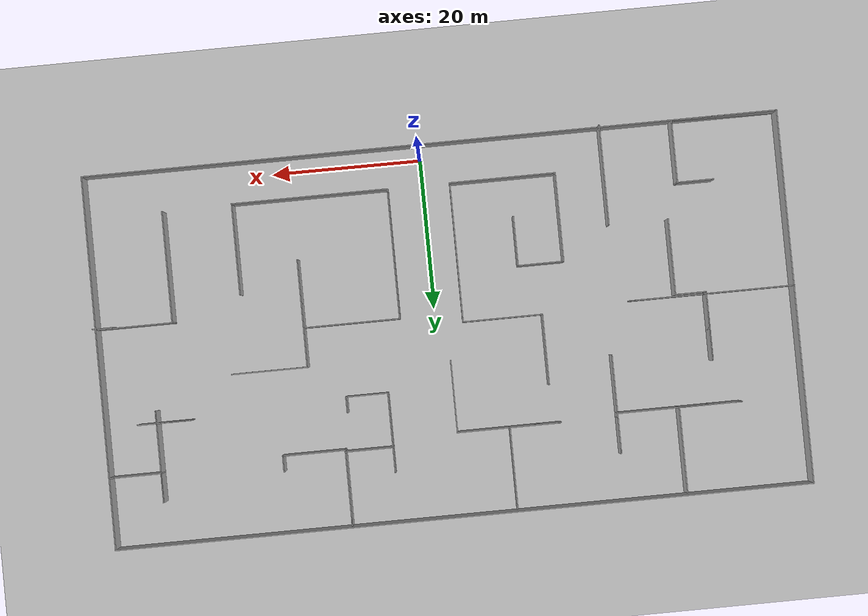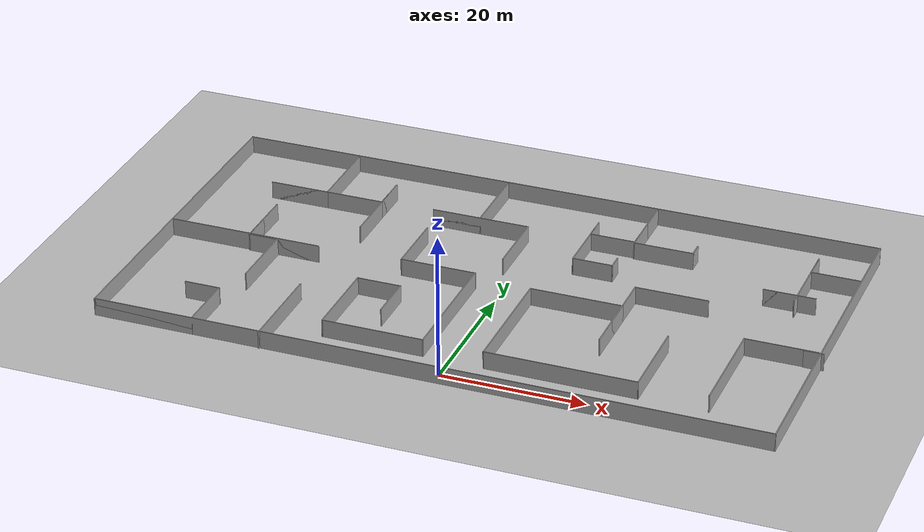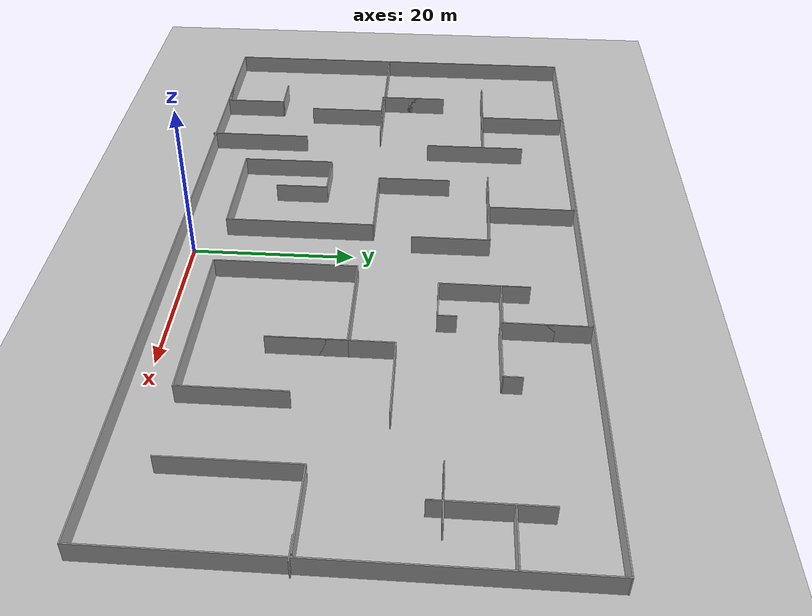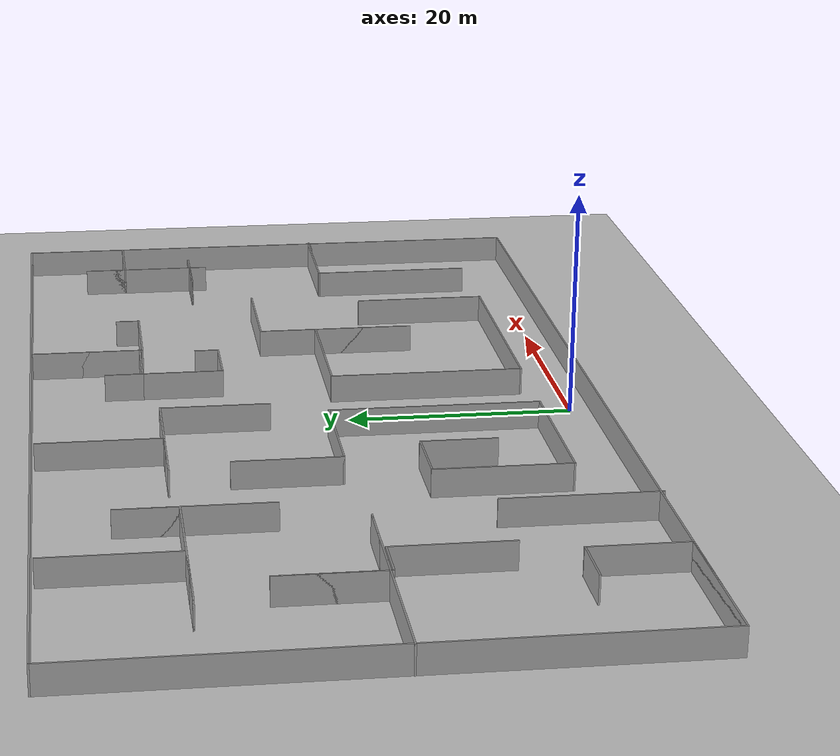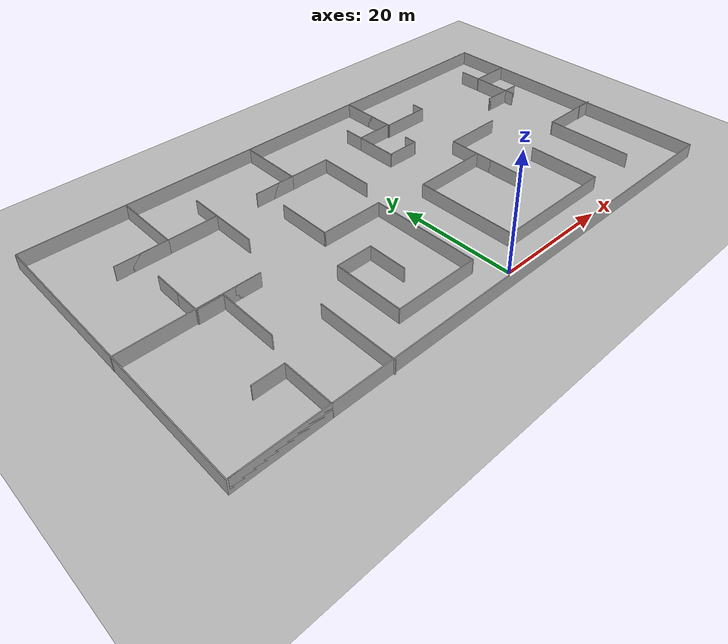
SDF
<sdf version="1.6">
 <world name="default">
  <model name="ground_plane">
   <static>1</static>
   <link name="link">
    <collision name="collision">
     <geometry><plane><normal>0 0 1</normal><size>100 100</size></plane></geometry>
     <surface><friction><ode><mu>100</mu><mu2>50</mu2></ode></friction></surface>
    </collision>
    <visual name="visual">
     <cast_shadows>0</cast_shadows>
     <geometry><plane><normal>0 0 1</normal><size>100 100</size></plane></geometry>
     <material>
      <script><uri>file://media/materials/scripts/gazebo.material</uri><name>Gazebo/Grey</name></script>
     </material>
    </visual>
   </link>
  </model>
  <model name="PaperTestRoom2">
   <pose>-1.27358 20.4941 0 0 -0 0</pose>
   <link name="Wall_10">
    <collision name="Wall_10_Collision">
     <geometry><box><size>14.25 0.15 2.5</size></box></geometry>
     <pose>0 0 1.25 0 -0 0</pose>
    </collision>
    <visual name="Wall_10_Visual">
     <pose>0 0 1.25 0 -0 0</pose>
     <geometry><box><size>14.25 0.15 2.5</size></box></geometry>
     <material>
      <script><uri>file://media/materials/scripts/gazebo.material</uri><name>Gazebo/Grey</name></script>
      <ambient>1 1 1 1</ambient>
     </material>
     <meta><layer>0</layer></meta>
    </visual>
    <pose>-39.665 -22.375 0 0 -0 0</pose>
   </link>
   <link name="Wall_11">
    <collision name="Wall_11_Collision">
     <geometry><box><size>8.5 0.15 2.5</size></box></geometry>
     <pose>0 0 1.25 0 -0 0</pose>
    </collision>
    <visual name="Wall_11_Visual">
     <pose>0 0 1.25 0 -0 0</pose>
     <geometry><box><size>8.5 0.15 2.5</size></box></geometry>
     <material>
      <script><uri>file://media/materials/scripts/gazebo.material</uri><name>Gazebo/Grey</name></script>
      <ambient>1 1 1 1</ambient>
     </material>
     <meta><layer>0</layer></meta>
    </visual>
    <pose>-32.615 -18.2 0 0 -0 1.5708</pose>
   </link>
   <link name="Wall_12">
    <collision name="Wall_12_Collision">
     <geometry><box><size>5 0.15 2.5</size></box></geometry>
     <pose>0 0 1.25 0 -0 0</pose>
    </collision>
    <visual name="Wall_12_Visual">
     <pose>0 0 1.25 0 -0 0</pose>
     <geometry><box><size>5 0.15 2.5</size></box></geometry>
     <material>
      <script><uri>file://media/materials/scripts/gazebo.material</uri><name>Gazebo/Grey</name></script>
      <ambient>1 1 1 1</ambient>
     </material>
     <meta><layer>0</layer></meta>
    </visual>
    <pose>-35.04 -14.025 0 0 -0 3.14159</pose>
   </link>
   <link name="Wall_14">
    <collision name="Wall_14_Collision">
     <geometry><box><size>13.5 0.15 2.5</size></box></geometry>
     <pose>0 0 1.25 0 -0 0</pose>
    </collision>
    <visual name="Wall_14_Visual">
     <pose>0 0 1.25 0 -0 0</pose>
     <geometry><box><size>13.5 0.15 2.5</size></box></geometry>
     <material>
      <script><uri>file://media/materials/scripts/gazebo.material</uri><name>Gazebo/Grey</name></script>
      <ambient>1 1 1 1</ambient>
     </material>
     <meta><layer>0</layer></meta>
    </visual>
    <pose>-22.9755 -15.9599 0 0 -0 1.5708</pose>
   </link>
   <link name="Wall_17">
    <collision name="Wall_17_Collision">
     <geometry><box><size>14.25 0.15 2.5</size></box></geometry>
     <pose>0 0 1.25 0 -0 0</pose>
    </collision>
    <visual name="Wall_17_Visual">
     <pose>0 0 1.25 0 -0 0</pose>
     <geometry><box><size>14.25 0.15 2.5</size></box></geometry>
     <material>
      <script><uri>file://media/materials/scripts/gazebo.material</uri><name>Gazebo/Grey</name></script>
      <ambient>1 1 1 1</ambient>
     </material>
     <meta><layer>0</layer></meta>
    </visual>
    <pose>-9.45369 -16.8689 0 0 -0 0</pose>
   </link>
   <link name="Wall_18">
    <collision name="Wall_18_Collision">
     <geometry><box><size>18.75 0.15 2.5</size></box></geometry>
     <pose>0 0 1.25 0 -0 0</pose>
    </collision>
    <visual name="Wall_18_Visual">
     <pose>0 0 1.25 0 -0 0</pose>
     <geometry><box><size>18.75 0.15 2.5</size></box></geometry>
     <material>
      <script><uri>file://media/materials/scripts/gazebo.material</uri><name>Gazebo/Grey</name></script>
      <ambient>1 1 1 1</ambient>
     </material>
     <meta><layer>0</layer></meta>
    </visual>
    <pose>-2.40369 -7.56892 0 0 -0 1.5708</pose>
   </link>
   <link name="Wall_19">
    <collision name="Wall_19_Collision">
     <geometry><box><size>10.75 0.15 2.5</size></box></geometry>
     <pose>0 0 1.25 0 -0 0</pose>
    </collision>
    <visual name="Wall_19_Visual">
     <pose>0 0 1.25 0 -0 0</pose>
     <geometry><box><size>10.75 0.15 2.5</size></box></geometry>
     <material>
      <script><uri>file://media/materials/scripts/gazebo.material</uri><name>Gazebo/Grey</name></script>
      <ambient>1 1 1 1</ambient>
     </material>
     <meta><layer>0</layer></meta>
    </visual>
    <pose>-7.70369 1.73108 0 0 -0 3.14159</pose>
   </link>
   <link name="Wall_20">
    <collision name="Wall_20_Collision">
     <geometry><box><size>9.5 0.15 2.5</size></box></geometry>
     <pose>0 0 1.25 0 -0 0</pose>
    </collision>
    <visual name="Wall_20_Visual">
     <pose>0 0 1.25 0 -0 0</pose>
     <geometry><box><size>9.5 0.15 2.5</size></box></geometry>
     <material>
      <script><uri>file://media/materials/scripts/gazebo.material</uri><name>Gazebo/Grey</name></script>
      <ambient>1 1 1 1</ambient>
     </material>
     <meta><layer>0</layer></meta>
    </visual>
    <pose>-13.0037 6.40608 0 0 -0 1.5708</pose>
   </link>
   <link name="Wall_23">
    <collision name="Wall_23_Collision">
     <geometry><box><size>12 0.15 2.5</size></box></geometry>
     <pose>0 0 1.25 0 -0 0</pose>
    </collision>
    <visual name="Wall_23_Visual">
     <pose>0 0 1.25 0 -0 0</pose>
     <geometry><box><size>12 0.15 2.5</size></box></geometry>
     <material>
      <script><uri>file://media/materials/scripts/gazebo.material</uri><name>Gazebo/Grey</name></script>
      <ambient>1 1 1 1</ambient>
     </material>
     <meta><layer>0</layer></meta>
    </visual>
    <pose>-16.5037 -10.9439 0 0 -0 1.5708</pose>
   </link>
   <link name="Wall_24">
    <collision name="Wall_24_Collision">
     <geometry><box><size>6.25 0.15 2.5</size></box></geometry>
     <pose>0 0 1.25 0 -0 0</pose>
    </collision>
    <visual name="Wall_24_Visual">
     <pose>0 0 1.25 0 -0 0</pose>
     <geometry><box><size>6.25 0.15 2.5</size></box></geometry>
     <material>
      <script><uri>file://media/materials/scripts/gazebo.material</uri><name>Gazebo/Grey</name></script>
      <ambient>1 1 1 1</ambient>
     </material>
     <meta><layer>0</layer></meta>
    </visual>
    <pose>-13.4537 -5.01892 0 0 -0 0</pose>
   </link>
   <link name="Wall_25">
    <collision name="Wall_25_Collision">
     <geometry><box><size>6.75 0.15 2.5</size></box></geometry>
     <pose>0 0 1.25 0 -0 0</pose>
    </collision>
    <visual name="Wall_25_Visual">
     <pose>0 0 1.25 0 -0 0</pose>
     <geometry><box><size>6.75 0.15 2.5</size></box></geometry>
     <material>
      <script><uri>file://media/materials/scripts/gazebo.material</uri><name>Gazebo/Grey</name></script>
      <ambient>1 1 1 1</ambient>
     </material>
     <meta><layer>0</layer></meta>
    </visual>
    <pose>-10.4037 -8.31892 0 0 -0 -1.5708</pose>
   </link>
   <link name="Wall_30">
    <collision name="Wall_30_Collision">
     <geometry><box><size>21 0.15 2.5</size></box></geometry>
     <pose>0 0 1.25 0 -0 0</pose>
    </collision>
    <visual name="Wall_30_Visual">
     <pose>0 0 1.25 0 -0 0</pose>
     <geometry><box><size>21 0.15 2.5</size></box></geometry>
     <material>
      <script><uri>file://media/materials/scripts/gazebo.material</uri><name>Gazebo/Grey</name></script>
      <ambient>1 1 1 1</ambient>
     </material>
     <meta><layer>0</layer></meta>
    </visual>
    <pose>16.3713 -16.8689 0 0 -0 0</pose>
   </link>
   <link name="Wall_31">
    <collision name="Wall_31_Collision">
     <geometry><box><size>12.25 0.15 2.5</size></box></geometry>
     <pose>0 0 1.25 0 -0 0</pose>
    </collision>
    <visual name="Wall_31_Visual">
     <pose>0 0 1.25 0 -0 0</pose>
     <geometry><box><size>12.25 0.15 2.5</size></box></geometry>
     <material>
      <script><uri>file://media/materials/scripts/gazebo.material</uri><name>Gazebo/Grey</name></script>
      <ambient>1 1 1 1</ambient>
     </material>
     <meta><layer>0</layer></meta>
    </visual>
    <pose>26.7963 -10.8189 0 0 -0 1.5708</pose>
   </link>
   <link name="Wall_34">
    <collision name="Wall_34_Collision">
     <geometry><box><size>17.5 0.15 2.5</size></box></geometry>
     <pose>0 0 1.25 0 -0 0</pose>
    </collision>
    <visual name="Wall_34_Visual">
     <pose>0 0 1.25 0 -0 0</pose>
     <geometry><box><size>17.5 0.15 2.5</size></box></geometry>
     <material>
      <script><uri>file://media/materials/scripts/gazebo.material</uri><name>Gazebo/Grey</name></script>
      <ambient>1 1 1 1</ambient>
     </material>
     <meta><layer>0</layer></meta>
    </visual>
    <pose>5.94631 -8.19392 0 0 -0 1.5708</pose>
   </link>
   <link name="Wall_35">
    <collision name="Wall_35_Collision">
     <geometry><box><size>13 0.15 2.5</size></box></geometry>
     <pose>0 0 1.25 0 -0 0</pose>
    </collision>
    <visual name="Wall_35_Visual">
     <pose>0 0 1.25 0 -0 0</pose>
     <geometry><box><size>13 0.15 2.5</size></box></geometry>
     <material>
      <script><uri>file://media/materials/scripts/gazebo.material</uri><name>Gazebo/Grey</name></script>
      <ambient>1 1 1 1</ambient>
     </material>
     <meta><layer>0</layer></meta>
    </visual>
    <pose>12.3713 0.481076 0 0 -0 0</pose>
   </link>
   <link name="Wall_36">
    <collision name="Wall_36_Collision">
     <geometry><box><size>9.25 0.15 2.5</size></box></geometry>
     <pose>0 0 1.25 0 -0 0</pose>
    </collision>
    <visual name="Wall_36_Visual">
     <pose>0 0 1.25 0 -0 0</pose>
     <geometry><box><size>9.25 0.15 2.5</size></box></geometry>
     <material>
      <script><uri>file://media/materials/scripts/gazebo.material</uri><name>Gazebo/Grey</name></script>
      <ambient>1 1 1 1</ambient>
     </material>
     <meta><layer>0</layer></meta>
    </visual>
    <pose>18.7963 -4.06892 0 0 -0 -1.5708</pose>
   </link>
   <link name="Wall_37">
    <collision name="Wall_37_Collision">
     <geometry><box><size>14.5 0.15 2.5</size></box></geometry>
     <pose>0 0 1.25 0 -0 0</pose>
    </collision>
    <visual name="Wall_37_Visual">
     <pose>0 0 1.25 0 -0 0</pose>
     <geometry><box><size>14.5 0.15 2.5</size></box></geometry>
     <material>
      <script><uri>file://media/materials/scripts/gazebo.material</uri><name>Gazebo/Grey</name></script>
      <ambient>1 1 1 1</ambient>
     </material>
     <meta><layer>0</layer></meta>
    </visual>
    <pose>18.7963 -1.44392 0 0 -0 1.5708</pose>
   </link>
   <link name="Wall_38">
    <collision name="Wall_38_Collision">
     <geometry><box><size>10.25 0.15 2.5</size></box></geometry>
     <pose>0 0 1.25 0 -0 0</pose>
    </collision>
    <visual name="Wall_38_Visual">
     <pose>0 0 1.25 0 -0 0</pose>
     <geometry><box><size>10.25 0.15 2.5</size></box></geometry>
     <material>
      <script><uri>file://media/materials/scripts/gazebo.material</uri><name>Gazebo/Grey</name></script>
      <ambient>1 1 1 1</ambient>
     </material>
     <meta><layer>0</layer></meta>
    </visual>
    <pose>23.8463 5.73108 0 0 -0 0</pose>
   </link>
   <link name="Wall_41">
    <collision name="Wall_41_Collision">
     <geometry><box><size>15 0.15 2.5</size></box></geometry>
     <pose>0 0 1.25 0 -0 0</pose>
    </collision>
    <visual name="Wall_41_Visual">
     <pose>0 0 1.25 0 -0 0</pose>
     <geometry><box><size>15 0.15 2.5</size></box></geometry>
     <material>
      <script><uri>file://media/materials/scripts/gazebo.material</uri><name>Gazebo/Grey</name></script>
      <ambient>1 1 1 1</ambient>
     </material>
     <meta><layer>0</layer></meta>
    </visual>
    <pose>36.1307 -9.29131 0 0 -0 1.5708</pose>
   </link>
   <link name="Wall_42">
    <collision name="Wall_42_Collision">
     <geometry><box><size>10 0.15 2.5</size></box></geometry>
     <pose>0 0 1.25 0 -0 0</pose>
    </collision>
    <visual name="Wall_42_Visual">
     <pose>0 0 1.25 0 -0 0</pose>
     <geometry><box><size>10 0.15 2.5</size></box></geometry>
     <material>
      <script><uri>file://media/materials/scripts/gazebo.material</uri><name>Gazebo/Grey</name></script>
      <ambient>1 1 1 1</ambient>
     </material>
     <meta><layer>0</layer></meta>
    </visual>
    <pose>41.0556 -1.86631 0 0 -0 0</pose>
   </link>
   <link name="Wall_44">
    <collision name="Wall_44_Collision">
     <geometry><box><size>2.75 0.15 2.5</size></box></geometry>
     <pose>0 0 1.25 0 -0 0</pose>
    </collision>
    <visual name="Wall_44_Visual">
     <pose>0 0 1.25 0 -0 0</pose>
     <geometry><box><size>2.75 0.15 2.5</size></box></geometry>
     <material>
      <script><uri>file://media/materials/scripts/gazebo.material</uri><name>Gazebo/Grey</name></script>
      <ambient>1 1 1 1</ambient>
     </material>
     <meta><layer>0</layer></meta>
    </visual>
    <pose>45.4491 -1.98643 0 0 -0 0</pose>
   </link>
   <link name="Wall_48">
    <collision name="Wall_48_Collision">
     <geometry><box><size>7 0.15 2.5</size></box></geometry>
     <pose>0 0 1.25 0 -0 0</pose>
    </collision>
    <visual name="Wall_48_Visual">
     <pose>0 0 1.25 0 -0 0</pose>
     <geometry><box><size>7 0.15 2.5</size></box></geometry>
     <material>
      <script><uri>file://media/materials/scripts/gazebo.material</uri><name>Gazebo/Grey</name></script>
      <ambient>1 1 1 1</ambient>
     </material>
     <meta><layer>0</layer></meta>
    </visual>
    <pose>42.8737 17.9027 0 0 -0 3.14159</pose>
   </link>
   <link name="Wall_49">
    <collision name="Wall_49_Collision">
     <geometry><box><size>4 0.15 2.5</size></box></geometry>
     <pose>0 0 1.25 0 -0 0</pose>
    </collision>
    <visual name="Wall_49_Visual">
     <pose>0 0 1.25 0 -0 0</pose>
     <geometry><box><size>4 0.15 2.5</size></box></geometry>
     <material>
      <script><uri>file://media/materials/scripts/gazebo.material</uri><name>Gazebo/Grey</name></script>
      <ambient>1 1 1 1</ambient>
     </material>
     <meta><layer>0</layer></meta>
    </visual>
    <pose>39.4487 19.8277 0 0 -0 1.5708</pose>
   </link>
   <link name="Wall_50">
    <collision name="Wall_50_Collision">
     <geometry><box><size>12.25 0.15 2.5</size></box></geometry>
     <pose>0 0 1.25 0 -0 0</pose>
    </collision>
    <visual name="Wall_50_Visual">
     <pose>0 0 1.25 0 -0 0</pose>
     <geometry><box><size>12.25 0.15 2.5</size></box></geometry>
     <material>
      <script><uri>file://media/materials/scripts/gazebo.material</uri><name>Gazebo/Grey</name></script>
      <ambient>1 1 1 1</ambient>
     </material>
     <meta><layer>0</layer></meta>
    </visual>
    <pose>39.4487 15.7027 0 0 -0 -1.5708</pose>
   </link>
   <link name="Wall_51">
    <collision name="Wall_51_Collision">
     <geometry><box><size>1.75 0.15 2.5</size></box></geometry>
     <pose>0 0 1.25 0 -0 0</pose>
    </collision>
    <visual name="Wall_51_Visual">
     <pose>0 0 1.25 0 -0 0</pose>
     <geometry><box><size>1.75 0.15 2.5</size></box></geometry>
     <material>
      <script><uri>file://media/materials/scripts/gazebo.material</uri><name>Gazebo/Grey</name></script>
      <ambient>1 1 1 1</ambient>
     </material>
     <meta><layer>0</layer></meta>
    </visual>
    <pose>39.4487 10.4527 0 0 -0 1.5708</pose>
   </link>
   <link name="Wall_52">
    <collision name="Wall_52_Collision">
     <geometry><box><size>4.75 0.15 2.5</size></box></geometry>
     <pose>0 0 1.25 0 -0 0</pose>
    </collision>
    <visual name="Wall_52_Visual">
     <pose>0 0 1.25 0 -0 0</pose>
     <geometry><box><size>4.75 0.15 2.5</size></box></geometry>
     <material>
      <script><uri>file://media/materials/scripts/gazebo.material</uri><name>Gazebo/Grey</name></script>
      <ambient>1 1 1 1</ambient>
     </material>
     <meta><layer>0</layer></meta>
    </visual>
    <pose>37.1487 11.2527 0 0 -0 3.14159</pose>
   </link>
   <link name="Wall_53">
    <collision name="Wall_53_Collision">
     <geometry><box><size>7.25 0.15 2.5</size></box></geometry>
     <pose>0 0 1.25 0 -0 0</pose>
    </collision>
    <visual name="Wall_53_Visual">
     <pose>0 0 1.25 0 -0 0</pose>
     <geometry><box><size>7.25 0.15 2.5</size></box></geometry>
     <material>
      <script><uri>file://media/materials/scripts/gazebo.material</uri><name>Gazebo/Grey</name></script>
      <ambient>1 1 1 1</ambient>
     </material>
     <meta><layer>0</layer></meta>
    </visual>
    <pose>38.3987 11.2527 0 0 -0 0</pose>
   </link>
   <link name="Wall_56">
    <collision name="Wall_56_Collision">
     <geometry><box><size>2.25 0.15 2.5</size></box></geometry>
     <pose>0 0 1.25 0 -0 0</pose>
    </collision>
    <visual name="Wall_56_Visual">
     <pose>0 0 1.25 0 -0 0</pose>
     <geometry><box><size>2.25 0.15 2.5</size></box></geometry>
     <material>
      <script><uri>file://media/materials/scripts/gazebo.material</uri><name>Gazebo/Grey</name></script>
      <ambient>1 1 1 1</ambient>
     </material>
     <meta><layer>0</layer></meta>
    </visual>
    <pose>23.1582 18.2121 0 0 -0 -1.5708</pose>
   </link>
   <link name="Wall_57">
    <collision name="Wall_57_Collision">
     <geometry><box><size>8.5 0.15 2.5</size></box></geometry>
     <pose>0 0 1.25 0 -0 0</pose>
    </collision>
    <visual name="Wall_57_Visual">
     <pose>0 0 1.25 0 -0 0</pose>
     <geometry><box><size>8.5 0.15 2.5</size></box></geometry>
     <material>
      <script><uri>file://media/materials/scripts/gazebo.material</uri><name>Gazebo/Grey</name></script>
      <ambient>1 1 1 1</ambient>
     </material>
     <meta><layer>0</layer></meta>
    </visual>
    <pose>18.9832 17.1621 0 0 -0 3.14159</pose>
   </link>
   <link name="Wall_58">
    <collision name="Wall_58_Collision">
     <geometry><box><size>10.25 0.15 2.5</size></box></geometry>
     <pose>0 0 1.25 0 -0 0</pose>
    </collision>
    <visual name="Wall_58_Visual">
     <pose>0 0 1.25 0 -0 0</pose>
     <geometry><box><size>10.25 0.15 2.5</size></box></geometry>
     <material>
      <script><uri>file://media/materials/scripts/gazebo.material</uri><name>Gazebo/Grey</name></script>
      <ambient>1 1 1 1</ambient>
     </material>
     <meta><layer>0</layer></meta>
    </visual>
    <pose>14.8082 22.2121 0 0 -0 1.5708</pose>
   </link>
   <link name="Wall_59">
    <collision name="Wall_59_Collision">
     <geometry><box><size>10 0.15 2.5</size></box></geometry>
     <pose>0 0 1.25 0 -0 0</pose>
    </collision>
    <visual name="Wall_59_Visual">
     <pose>0 0 1.25 0 -0 0</pose>
     <geometry><box><size>10 0.15 2.5</size></box></geometry>
     <material>
      <script><uri>file://media/materials/scripts/gazebo.material</uri><name>Gazebo/Grey</name></script>
      <ambient>1 1 1 1</ambient>
     </material>
     <meta><layer>0</layer></meta>
    </visual>
    <pose>14.8082 22.3371 0 0 -0 -1.5708</pose>
   </link>
   <link name="Wall_6">
    <collision name="Wall_6_Collision">
     <geometry><box><size>93 0.15 2.5</size></box></geometry>
     <pose>0 0 1.25 0 -0 0</pose>
    </collision>
    <visual name="Wall_6_Visual">
     <pose>0 0 1.25 0 -0 0</pose>
     <geometry><box><size>93 0.15 2.5</size></box></geometry>
     <material>
      <script><uri>file://media/materials/scripts/gazebo.material</uri><name>Gazebo/Grey</name></script>
      <ambient>1 1 1 1</ambient>
     </material>
     <meta><layer>0</layer></meta>
    </visual>
    <pose>-0.040017 -22.375 0 0 -0 0</pose>
   </link>
   <link name="Wall_60">
    <collision name="Wall_60_Collision">
     <geometry><box><size>6.5 0.15 2.5</size></box></geometry>
     <pose>0 0 1.25 0 -0 0</pose>
    </collision>
    <visual name="Wall_60_Visual">
     <pose>0 0 1.25 0 -0 0</pose>
     <geometry><box><size>6.5 0.15 2.5</size></box></geometry>
     <material>
      <script><uri>file://media/materials/scripts/gazebo.material</uri><name>Gazebo/Grey</name></script>
      <ambient>1 1 1 1</ambient>
     </material>
     <meta><layer>0</layer></meta>
    </visual>
    <pose>11.6332 17.4121 0 0 -0 3.14159</pose>
   </link>
   <link name="Wall_61">
    <collision name="Wall_61_Collision">
     <geometry><box><size>3.5 0.15 2.5</size></box></geometry>
     <pose>0 0 1.25 0 -0 0</pose>
    </collision>
    <visual name="Wall_61_Visual">
     <pose>0 0 1.25 0 -0 0</pose>
     <geometry><box><size>3.5 0.15 2.5</size></box></geometry>
     <material>
      <script><uri>file://media/materials/scripts/gazebo.material</uri><name>Gazebo/Grey</name></script>
      <ambient>1 1 1 1</ambient>
     </material>
     <meta><layer>0</layer></meta>
    </visual>
    <pose>8.45816 19.0871 0 0 -0 1.5708</pose>
   </link>
   <link name="Wall_62">
    <collision name="Wall_62_Collision">
     <geometry><box><size>10.75 0.15 2.5</size></box></geometry>
     <pose>0 0 1.25 0 -0 0</pose>
    </collision>
    <visual name="Wall_62_Visual">
     <pose>0 0 1.25 0 -0 0</pose>
     <geometry><box><size>10.75 0.15 2.5</size></box></geometry>
     <material>
      <script><uri>file://media/materials/scripts/gazebo.material</uri><name>Gazebo/Grey</name></script>
      <ambient>1 1 1 1</ambient>
     </material>
     <meta><layer>0</layer></meta>
    </visual>
    <pose>8.45816 15.4621 0 0 -0 -1.5708</pose>
   </link>
   <link name="Wall_63">
    <collision name="Wall_63_Collision">
     <geometry><box><size>5.75 0.15 2.5</size></box></geometry>
     <pose>0 0 1.25 0 -0 0</pose>
    </collision>
    <visual name="Wall_63_Visual">
     <pose>0 0 1.25 0 -0 0</pose>
     <geometry><box><size>5.75 0.15 2.5</size></box></geometry>
     <material>
      <script><uri>file://media/materials/scripts/gazebo.material</uri><name>Gazebo/Grey</name></script>
      <ambient>1 1 1 1</ambient>
     </material>
     <meta><layer>0</layer></meta>
    </visual>
    <pose>11.2582 10.1621 0 0 -0 0</pose>
   </link>
   <link name="Wall_64">
    <collision name="Wall_64_Collision">
     <geometry><box><size>2.25 0.15 2.5</size></box></geometry>
     <pose>0 0 1.25 0 -0 0</pose>
    </collision>
    <visual name="Wall_64_Visual">
     <pose>0 0 1.25 0 -0 0</pose>
     <geometry><box><size>2.25 0.15 2.5</size></box></geometry>
     <material>
      <script><uri>file://media/materials/scripts/gazebo.material</uri><name>Gazebo/Grey</name></script>
      <ambient>1 1 1 1</ambient>
     </material>
     <meta><layer>0</layer></meta>
    </visual>
    <pose>14.0582 11.2121 0 0 -0 1.5708</pose>
   </link>
   <link name="Wall_67">
    <collision name="Wall_67_Collision">
     <geometry><box><size>11 0.15 2.5</size></box></geometry>
     <pose>0 0 1.25 0 -0 0</pose>
    </collision>
    <visual name="Wall_67_Visual">
     <pose>0 0 1.25 0 -0 0</pose>
     <geometry><box><size>11 0.15 2.5</size></box></geometry>
     <material>
      <script><uri>file://media/materials/scripts/gazebo.material</uri><name>Gazebo/Grey</name></script>
      <ambient>1 1 1 1</ambient>
     </material>
     <meta><layer>0</layer></meta>
    </visual>
    <pose>-7.26444 21.7016 0 0 -0 -1.5708</pose>
   </link>
   <link name="Wall_68">
    <collision name="Wall_68_Collision">
     <geometry><box><size>7 0.15 2.5</size></box></geometry>
     <pose>0 0 1.25 0 -0 0</pose>
    </collision>
    <visual name="Wall_68_Visual">
     <pose>0 0 1.25 0 -0 0</pose>
     <geometry><box><size>7 0.15 2.5</size></box></geometry>
     <material>
      <script><uri>file://media/materials/scripts/gazebo.material</uri><name>Gazebo/Grey</name></script>
      <ambient>1 1 1 1</ambient>
     </material>
     <meta><layer>0</layer></meta>
    </visual>
    <pose>-10.6894 16.2766 0 0 -0 3.14159</pose>
   </link>
   <link name="Wall_69">
    <collision name="Wall_69_Collision">
     <geometry><box><size>14 0.15 2.5</size></box></geometry>
     <pose>0 0 1.25 0 -0 0</pose>
    </collision>
    <visual name="Wall_69_Visual">
     <pose>0 0 1.25 0 -0 0</pose>
     <geometry><box><size>14 0.15 2.5</size></box></geometry>
     <material>
      <script><uri>file://media/materials/scripts/gazebo.material</uri><name>Gazebo/Grey</name></script>
      <ambient>1 1 1 1</ambient>
     </material>
     <meta><layer>0</layer></meta>
    </visual>
    <pose>-7.18944 16.2766 0 0 -0 0</pose>
   </link>
   <link name="Wall_7">
    <collision name="Wall_7_Collision">
     <geometry><box><size>50 0.15 2.5</size></box></geometry>
     <pose>0 0 1.25 0 -0 0</pose>
    </collision>
    <visual name="Wall_7_Visual">
     <pose>0 0 1.25 0 -0 0</pose>
     <geometry><box><size>50 0.15 2.5</size></box></geometry>
     <material>
      <script><uri>file://media/materials/scripts/gazebo.material</uri><name>Gazebo/Grey</name></script>
      <ambient>1 1 1 1</ambient>
     </material>
     <meta><layer>0</layer></meta>
    </visual>
    <pose>46.385 2.55 0 0 -0 1.5708</pose>
   </link>
   <link name="Wall_70">
    <collision name="Wall_70_Collision">
     <geometry><box><size>9.75 0.15 2.5</size></box></geometry>
     <pose>0 0 1.25 0 -0 0</pose>
    </collision>
    <visual name="Wall_70_Visual">
     <pose>0 0 1.25 0 -0 0</pose>
     <geometry><box><size>9.75 0.15 2.5</size></box></geometry>
     <material>
      <script><uri>file://media/materials/scripts/gazebo.material</uri><name>Gazebo/Grey</name></script>
      <ambient>1 1 1 1</ambient>
     </material>
     <meta><layer>0</layer></meta>
    </visual>
    <pose>-0.264437 11.4766 0 0 -0 -1.5708</pose>
   </link>
   <link name="Wall_75">
    <collision name="Wall_75_Collision">
     <geometry><box><size>11.5 0.15 2.5</size></box></geometry>
     <pose>0 0 1.25 0 -0 0</pose>
    </collision>
    <visual name="Wall_75_Visual">
     <pose>0 0 1.25 0 -0 0</pose>
     <geometry><box><size>11.5 0.15 2.5</size></box></geometry>
     <material>
      <script><uri>file://media/materials/scripts/gazebo.material</uri><name>Gazebo/Grey</name></script>
      <ambient>1 1 1 1</ambient>
     </material>
     <meta><layer>0</layer></meta>
    </visual>
    <pose>-29.9196 21.4516 0 0 -0 -1.5708</pose>
   </link>
   <link name="Wall_76">
    <collision name="Wall_76_Collision">
     <geometry><box><size>8.5 0.15 2.5</size></box></geometry>
     <pose>0 0 1.25 0 -0 0</pose>
    </collision>
    <visual name="Wall_76_Visual">
     <pose>0 0 1.25 0 -0 0</pose>
     <geometry><box><size>8.5 0.15 2.5</size></box></geometry>
     <material>
      <script><uri>file://media/materials/scripts/gazebo.material</uri><name>Gazebo/Grey</name></script>
      <ambient>1 1 1 1</ambient>
     </material>
     <meta><layer>0</layer></meta>
    </visual>
    <pose>-34.0946 15.7766 0 0 -0 3.14159</pose>
   </link>
   <link name="Wall_77">
    <collision name="Wall_77_Collision">
     <geometry><box><size>16.75 0.15 2.5</size></box></geometry>
     <pose>0 0 1.25 0 -0 0</pose>
    </collision>
    <visual name="Wall_77_Visual">
     <pose>0 0 1.25 0 -0 0</pose>
     <geometry><box><size>16.75 0.15 2.5</size></box></geometry>
     <material>
      <script><uri>file://media/materials/scripts/gazebo.material</uri><name>Gazebo/Grey</name></script>
      <ambient>1 1 1 1</ambient>
     </material>
     <meta><layer>0</layer></meta>
    </visual>
    <pose>-29.9696 15.7766 0 0 -0 0</pose>
   </link>
   <link name="Wall_78">
    <collision name="Wall_78_Collision">
     <geometry><box><size>5.5 0.15 2.5</size></box></geometry>
     <pose>0 0 1.25 0 -0 0</pose>
    </collision>
    <visual name="Wall_78_Visual">
     <pose>0 0 1.25 0 -0 0</pose>
     <geometry><box><size>5.5 0.15 2.5</size></box></geometry>
     <material>
      <script><uri>file://media/materials/scripts/gazebo.material</uri><name>Gazebo/Grey</name></script>
      <ambient>1 1 1 1</ambient>
     </material>
     <meta><layer>0</layer></meta>
    </visual>
    <pose>-21.6696 18.4516 0 0 -0 1.5708</pose>
   </link>
   <link name="Wall_79">
    <collision name="Wall_79_Collision">
     <geometry><box><size>13.25 0.15 2.5</size></box></geometry>
     <pose>0 0 1.25 0 -0 0</pose>
    </collision>
    <visual name="Wall_79_Visual">
     <pose>0 0 1.25 0 -0 0</pose>
     <geometry><box><size>13.25 0.15 2.5</size></box></geometry>
     <material>
      <script><uri>file://media/materials/scripts/gazebo.material</uri><name>Gazebo/Grey</name></script>
      <ambient>1 1 1 1</ambient>
     </material>
     <meta><layer>0</layer></meta>
    </visual>
    <pose>-21.6696 14.5766 0 0 -0 -1.5708</pose>
   </link>
   <link name="Wall_8">
    <collision name="Wall_8_Collision">
     <geometry><box><size>93.25 0.15 2.5</size></box></geometry>
     <pose>0 0 1.25 0 -0 0</pose>
    </collision>
    <visual name="Wall_8_Visual">
     <pose>0 0 1.25 0 -0 0</pose>
     <geometry><box><size>93.25 0.15 2.5</size></box></geometry>
     <material>
      <script><uri>file://media/materials/scripts/gazebo.material</uri><name>Gazebo/Grey</name></script>
      <ambient>1 1 1 1</ambient>
     </material>
     <meta><layer>0</layer></meta>
    </visual>
    <pose>-0.165017 27.475 0 0 -0 3.14159</pose>
   </link>
   <link name="Wall_84">
    <collision name="Wall_84_Collision">
     <geometry><box><size>22 0.15 2.5</size></box></geometry>
     <pose>0 0 1.25 0 -0 0</pose>
    </collision>
    <visual name="Wall_84_Visual">
     <pose>0 0 1.25 0 -0 0</pose>
     <geometry><box><size>22 0.15 2.5</size></box></geometry>
     <material>
      <script><uri>file://media/materials/scripts/gazebo.material</uri><name>Gazebo/Grey</name></script>
      <ambient>1 1 1 1</ambient>
     </material>
     <meta><layer>0</layer></meta>
    </visual>
    <pose>-35.8241 1.07321 0 0 -0 0</pose>
   </link>
   <link name="Wall_85">
    <collision name="Wall_85_Collision">
     <geometry><box><size>10.25 0.15 2.5</size></box></geometry>
     <pose>0 0 1.25 0 -0 0</pose>
    </collision>
    <visual name="Wall_85_Visual">
     <pose>0 0 1.25 0 -0 0</pose>
     <geometry><box><size>10.25 0.15 2.5</size></box></geometry>
     <material>
      <script><uri>file://media/materials/scripts/gazebo.material</uri><name>Gazebo/Grey</name></script>
      <ambient>1 1 1 1</ambient>
     </material>
     <meta><layer>0</layer></meta>
    </visual>
    <pose>-29.9491 1.07321 0 0 -0 3.14159</pose>
   </link>
   <link name="Wall_86">
    <collision name="Wall_86_Collision">
     <geometry><box><size>9 0.15 2.5</size></box></geometry>
     <pose>0 0 1.25 0 -0 0</pose>
    </collision>
    <visual name="Wall_86_Visual">
     <pose>0 0 1.25 0 -0 0</pose>
     <geometry><box><size>9 0.15 2.5</size></box></geometry>
     <material>
      <script><uri>file://media/materials/scripts/gazebo.material</uri><name>Gazebo/Grey</name></script>
      <ambient>1 1 1 1</ambient>
     </material>
     <meta><layer>0</layer></meta>
    </visual>
    <pose>-34.9991 5.49821 0 0 -0 1.5708</pose>
   </link>
   <link name="Wall_87">
    <collision name="Wall_87_Collision">
     <geometry><box><size>9.25 0.15 2.5</size></box></geometry>
     <pose>0 0 1.25 0 -0 0</pose>
    </collision>
    <visual name="Wall_87_Visual">
     <pose>0 0 1.25 0 -0 0</pose>
     <geometry><box><size>9.25 0.15 2.5</size></box></geometry>
     <material>
      <script><uri>file://media/materials/scripts/gazebo.material</uri><name>Gazebo/Grey</name></script>
      <ambient>1 1 1 1</ambient>
     </material>
     <meta><layer>0</layer></meta>
    </visual>
    <pose>-34.9991 5.37321 0 0 -0 -1.5708</pose>
   </link>
   <link name="Wall_88">
    <collision name="Wall_88_Collision">
     <geometry><box><size>4.25 0.15 2.5</size></box></geometry>
     <pose>0 0 1.25 0 -0 0</pose>
    </collision>
    <visual name="Wall_88_Visual">
     <pose>0 0 1.25 0 -0 0</pose>
     <geometry><box><size>4.25 0.15 2.5</size></box></geometry>
     <material>
      <script><uri>file://media/materials/scripts/gazebo.material</uri><name>Gazebo/Grey</name></script>
      <ambient>1 1 1 1</ambient>
     </material>
     <meta><layer>0</layer></meta>
    </visual>
    <pose>-32.9491 0.82321 0 0 -0 0</pose>
   </link>
   <link name="Wall_89">
    <collision name="Wall_89_Collision">
     <geometry><box><size>10.25 0.15 2.5</size></box></geometry>
     <pose>0 0 1.25 0 -0 0</pose>
    </collision>
    <visual name="Wall_89_Visual">
     <pose>0 0 1.25 0 -0 0</pose>
     <geometry><box><size>10.25 0.15 2.5</size></box></geometry>
     <material>
      <script><uri>file://media/materials/scripts/gazebo.material</uri><name>Gazebo/Grey</name></script>
      <ambient>1 1 1 1</ambient>
     </material>
     <meta><layer>0</layer></meta>
    </visual>
    <pose>-30.8991 -4.22679 0 0 -0 -1.5708</pose>
   </link>
   <link name="Wall_9">
    <collision name="Wall_9_Collision">
     <geometry><box><size>50 0.15 2.5</size></box></geometry>
     <pose>0 0 1.25 0 -0 0</pose>
    </collision>
    <visual name="Wall_9_Visual">
     <pose>0 0 1.25 0 -0 0</pose>
     <geometry><box><size>50 0.15 2.5</size></box></geometry>
     <material>
      <script><uri>file://media/materials/scripts/gazebo.material</uri><name>Gazebo/Grey</name></script>
      <ambient>1 1 1 1</ambient>
     </material>
     <meta><layer>0</layer></meta>
    </visual>
    <pose>-46.715 2.55 0 0 -0 -1.5708</pose>
   </link>
   <static>1</static>
  </model>
 </world>
</sdf>
